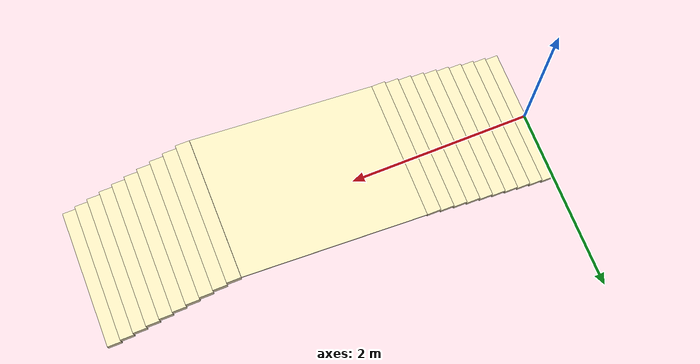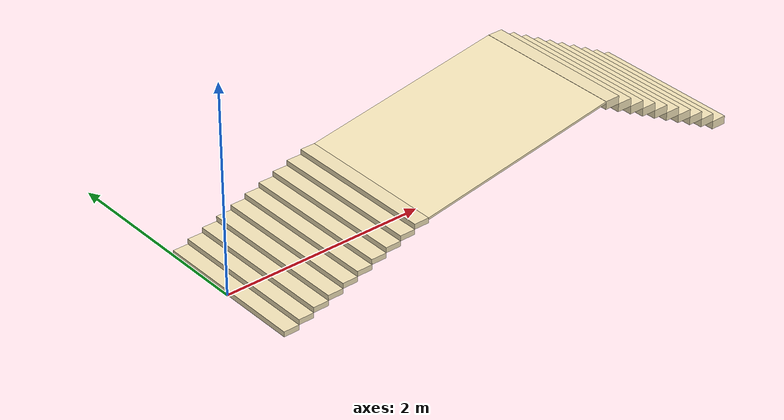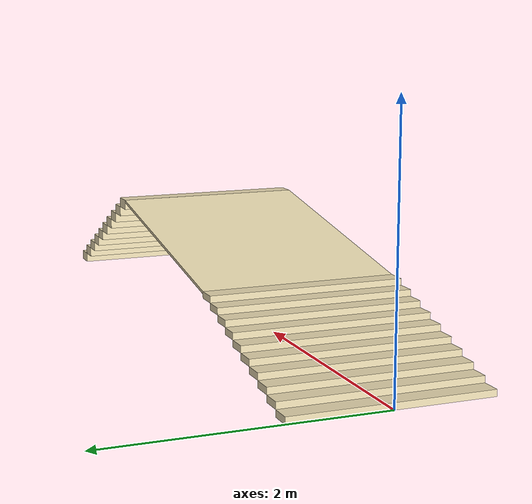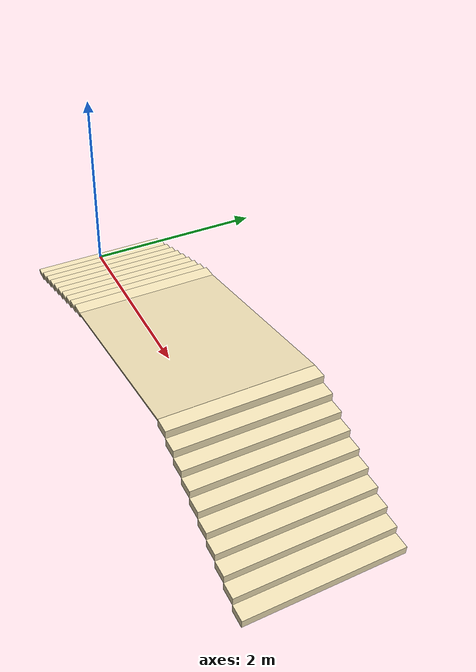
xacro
<?xml version="1.0"?>
<robot name="stairs" xmlns:xacro="http://www.ros.org/wiki/xacro">

    <material name="ocher">
        <color rgba="0.949 0.890 0.722 1"/>
    </material>

    <xacro:property name="s1_quantity" value="10"/>
    <xacro:property name="s1_height" value="0.05"/>
    <xacro:property name="s1_depth" value="0.15"/>
    <xacro:property name="s1_width" value="1.5"/>
    <xacro:property name="s1_offset_x" value="0.0"/>
    <xacro:property name="s1_offset_z" value="0.0"/>

    <xacro:property name="s2_angle" value="10"/>
    <xacro:property name="s2_length" value="2"/>
    <xacro:property name="s2_width" value="1.5"/>
    <xacro:property name="s2_offset_x" value="${s1_offset_x + s1_depth * s1_quantity}"/>
    <xacro:property name="s2_offset_z" value="${s1_offset_z + s1_height * s1_quantity}"/>

    <xacro:property name="s3_quantity" value="10"/>
    <xacro:property name="s3_height" value="-0.08"/>
    <xacro:property name="s3_depth" value="0.15"/>
    <xacro:property name="s3_width" value="1.5"/>
    <xacro:property name="s3_offset_x" value="${s2_offset_x + s2_length*cos(s2_angle*pi/180)}"/>
    <xacro:property name="s3_offset_z" value="${s2_offset_z + s2_length*sin(s2_angle*pi/180)}"/>

    <xacro:macro name="staircase_segment" params="postfix quantity height depth width offset_x offset_z">
        <link name="staircase_${postfix}_${quantity-1}">
            <visual>
                <geometry>
                    <box size="${depth} ${width} ${height}"/>
                </geometry>
                <material name="ocher"/>
            </visual>
            <collision>
                <geometry>
                    <box size="${depth} ${width} ${height}"/>
                </geometry>
            </collision>
            <inertial>
                <mass value="100"/>
                <inertia ixx="${0.0833333 * 100 * (depth * depth + height * height )}" ixy="0.0" ixz="0.0"
                    iyy="${0.0833333 * 100 * ( width * width + height * height)}" iyz="0.0"
                    izz="${0.0833333 * 100 * ( width * width + depth * depth)}"/>
            </inertial>
        </link>

        <gazebo reference="staircase_${postfix}_${quantity-1}">
            <material>Gazebo/DarkGrey</material>
        </gazebo>

        <joint name="staircase_joint_${postfix}_${quantity-1}" type="fixed">
            <parent link="world"/>
            <child link="staircase_${postfix}_${quantity-1}"/>
            <origin xyz="${offset_x + depth/2} 0 ${offset_z + height/2}" rpy="0 0 0"/>
        </joint>

        <!-- Create staircases recursively, use quantity-1 because recursion stops at zero-->
        <xacro:if value="${quantity-1 > 0}">
            <xacro:staircase_segment postfix="${postfix}" quantity="${quantity-1}" height="${height}" depth="${depth}" width="${width}" offset_x="${offset_x + depth}" offset_z="${offset_z + height}"/>
        </xacro:if>
    </xacro:macro>

    <xacro:macro name="ramp_segment" params="postfix angle length width offset_x offset_z">

        <xacro:property name="thickness" value="0.02"/>
        <xacro:property name="theta" value="${-angle*pi/180}"/>
        <link name="ramp_${postfix}">
            <visual>
                <geometry>
                    <box size="${length} ${width} ${thickness}"/>
                </geometry>
                <material name="ocher"/>
            </visual>
            <collision>
                <geometry>
                    <box size="${length} ${width} ${thickness}"/>
                </geometry>
            </collision>
            <inertial>
                <mass value="100"/>
                <inertia ixx="0" ixy="0" ixz="0" iyy="0" iyz="0" izz="0"/>
            </inertial>
        </link>

        <gazebo reference="ramp_${postfix}">
            <material>Gazebo/DarkGrey</material>
        </gazebo>

        <joint name="ramp_joint_${postfix}" type="fixed">
            <parent link="world"/>
            <child link="ramp_${postfix}"/>
            <origin xyz="${offset_x + length*cos(theta)/2} 0 ${offset_z - length*sin(theta)/2 - thickness*cos(theta)/2}" rpy="0 ${theta} 0"/>
        </joint>

    </xacro:macro>

    <link name="world"/>

    <xacro:staircase_segment postfix="s1" quantity="${s1_quantity}" height="${s1_height}" depth="${s1_depth}" width="${s1_width}" offset_x="${s1_offset_x}" offset_z="${s1_offset_z}"/>
    <xacro:ramp_segment postfix="s2" angle="${s2_angle}" length="${s2_length}" width="${s2_width}" offset_x="${s2_offset_x}" offset_z="${s2_offset_z}"/>
    <xacro:staircase_segment postfix="s3" quantity="${s3_quantity}" height="${s3_height}" depth="${s3_depth}" width="${s3_width}" offset_x="${s3_offset_x}" offset_z="${s3_offset_z}"/>

</robot>
